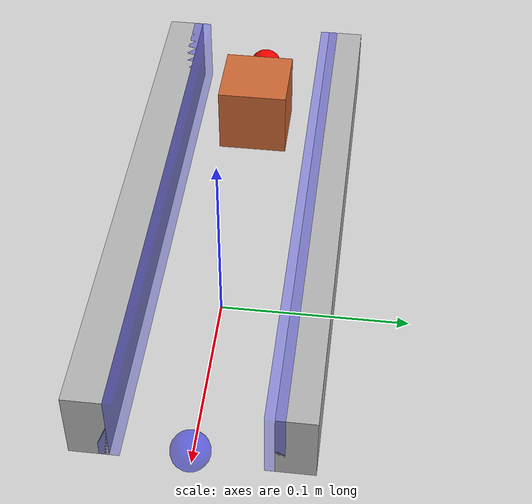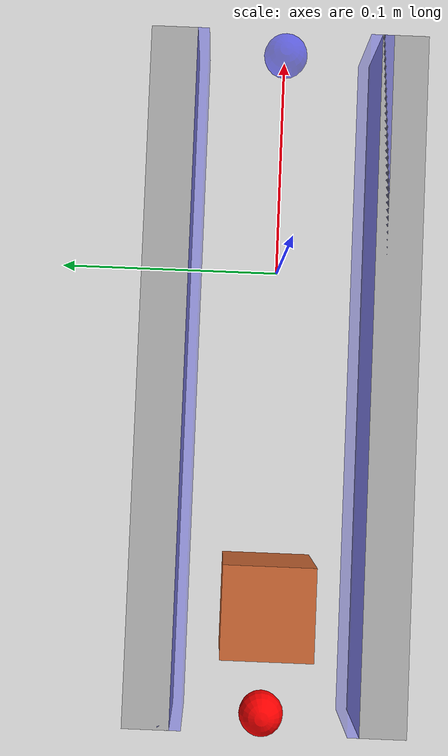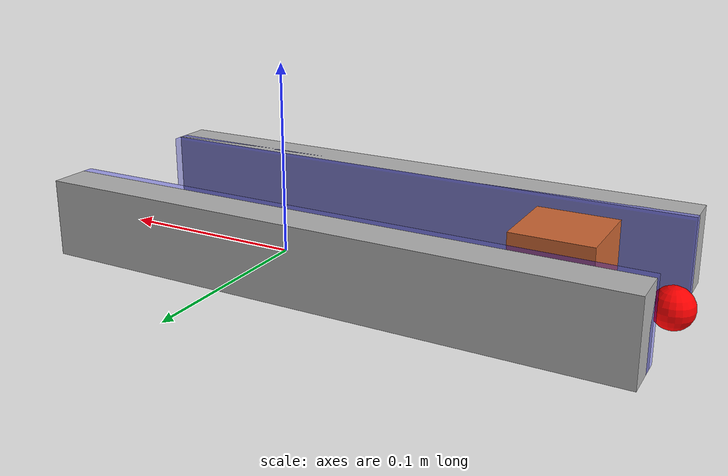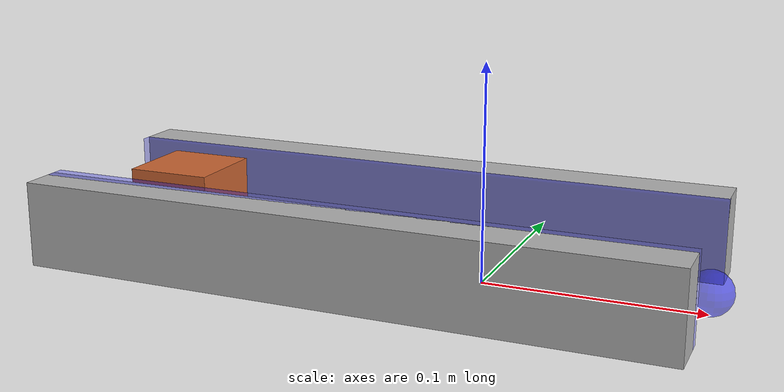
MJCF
<mujoco model="particle_corridor">
  <option timestep="0.005" iterations="10" ls_iterations="10" integrator="implicitfast">
    <flag eulerdamp="disable"/>
  </option>
  <default>
    <joint type="hinge" axis="0 0 1" limited="true" range="-.4 .4" damping="0" />
    <motor gear=".1" ctrlrange="-1 1" ctrllimited="true" />
    <default class="translation">
      <position kp="20" kv="10" ctrlrange="-0.4 0.4"/>
    </default>
    <geom friction="0.9"/>
  </default>

  <worldbody>
    <site name="reference" pos="0 0 0.01" size="0.01" rgba="0 0 0 0.0"/>

    <!-- Goal for the particle -->
    <body name="goal" mocap="true" pos="-0.15 0.0 0.01" quat="1 0 0 0">
      <geom type="sphere" size=".01" contype="0" conaffinity="0" rgba="0 1 0 .5" />
    </body>

    <!-- The corridor walls with sites for touch sensors -->
    <body name="left_wall" pos="-0.05 0.05 0.02">
      <geom name="left_wall_geom" type="box" size="0.15 0.01 0.02" rgba="0.7 0.7 0.7 1"
        contype="1" conaffinity="1" solref="0.02 1"/>
      <site name="left_wall_site" pos="0 -0.01 0" size="0.15 0.005 0.02" type="box" rgba="0 0 1 0.3"/>
    </body>

    <body name="right_wall" pos="-0.05 -0.05 0.02">
      <geom name="right_wall_geom" type="box" size="0.15 0.01 0.02" rgba="0.7 0.7 0.7 1"
        contype="1" conaffinity="1" solref="0.02 1"/>
      <site name="right_wall_site" pos="0 0.01 0" size="0.15 0.005 0.02" type="box" rgba="0 0 1 0.3"/>
    </body>

    <!-- The corridor opening -->
    <site name="corridor_center" pos="0.1 0 0.01" size="0.01" rgba="0 0 1 0.5"/>

    <!-- The box that should be pushed through the corridor -->
    <body name="box" pos="-0.15 0 0.02">
      <freejoint name="box_joint"/>
      <geom type="box" name="box" size="0.02 0.02 0.02" condim="3"
        friction="0.6" contype="2" conaffinity="1" solref="0.02 1" priority="1"
        mass="0.15" rgba="0.8 0.4 0.2 1"/>
      <site name="box_site" pos="0 0 0" size="0.01" />
    </body>

    <!-- The particle that pushes the box -->
    <body name="pointmass" pos="-0.2 0.0 0.011">
      <joint name="root_x" type="slide" pos="0 0 0" axis="1 0 0" />
      <joint name="root_y" type="slide" pos="0 0 0" axis="0 1 0" />
      <geom name="pointmass" type="sphere" size=".01" mass=".3" rgba="1 0 0 1"/>
      <site name="particle" pos="0 0 0" size="0.01" />
    </body>
  </worldbody>

  <actuator>
    <position name="x" site="particle" refsite="reference" gear="1 0 0 0 0 0" class="translation"/>
    <position name="y" site="particle" refsite="reference" gear="0 1 0 0 0 0" class="translation"/>
  </actuator>

  <sensor>
    <framepos name="box_position" objtype="site" objname="box_site"/>
    <!-- Touch sensors for wall collision detection -->
    <touch name="left_wall_touch" site="left_wall_site"/>
    <touch name="right_wall_touch" site="right_wall_site"/>
  </sensor>
</mujoco>
